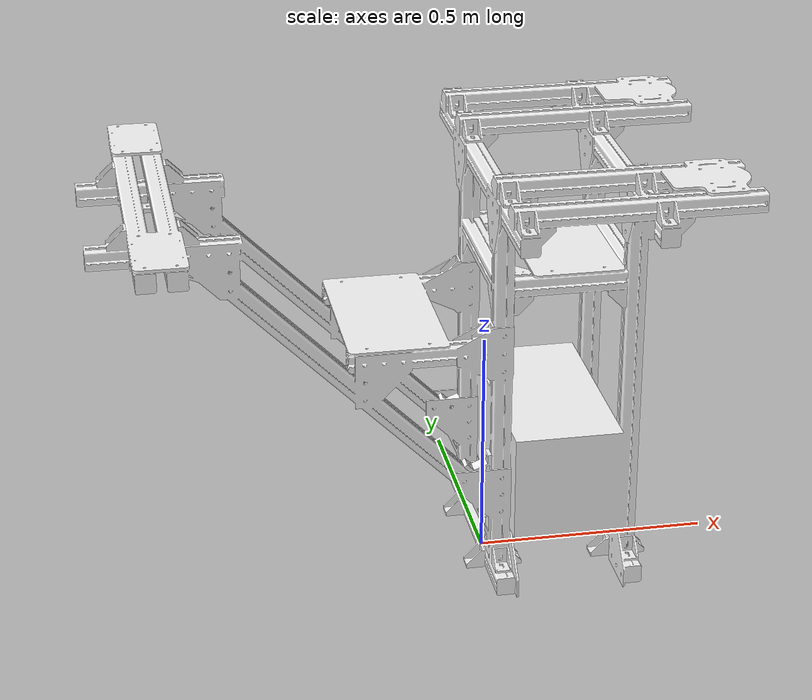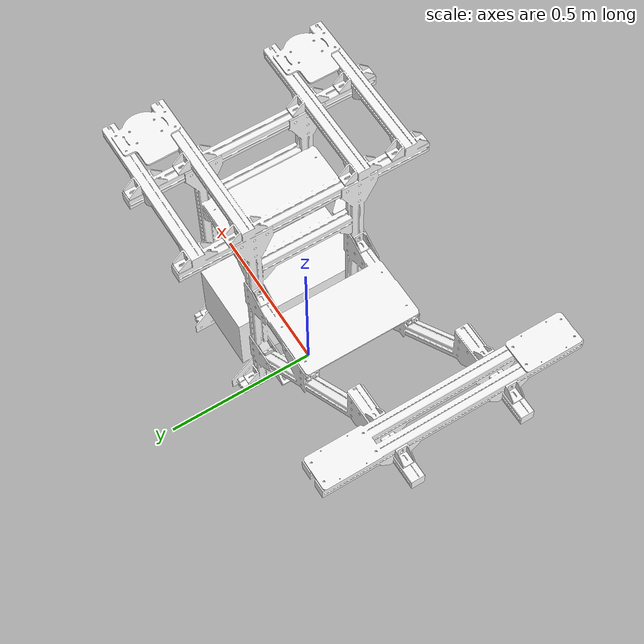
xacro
<?xml version="1.0"?>
<robot  xmlns:xacro="http://www.ros.org/wiki/xacro" name="car_frame" >

<xacro:property name="ns" value="$(arg ns)/" />

  <link name="base">
    <visual>
      <geometry>
       <mesh filename="package://mycobot_description/urdf/myarm_m/car_frame.dae"/>
      </geometry>
      <origin xyz = "-0.65 -0.135 -0.2 " rpy = " 1.5706 0 1.5706"/>
    </visual>
    <collision>
      <geometry>
       <mesh filename="package://mycobot_description/urdf/myarm_m/car_frame.dae"/>
        </geometry>
        <origin xyz = "-0.65 -0.135 -0.2 " rpy = " 1.5706 0 1.5706"/>
    </collision>
  </link>

</robot>
